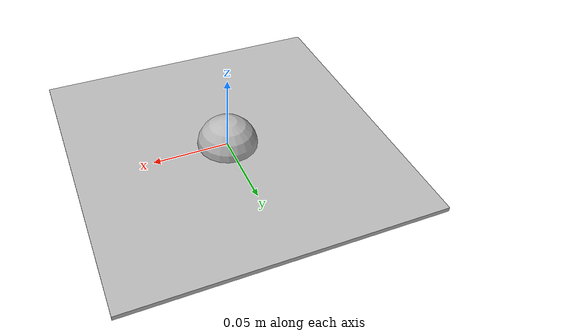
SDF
<?xml version="1.0" ?>
<sdf version="1.6">
	<model name="roboy_vr_booth">
		<link name="base">
			<self_collide>false</self_collide>
			<pose frame="">0.0 0.0 0.0 0.0 -0.0 0.0</pose>
			<inertial>
				<pose frame="">0.0 0.0 0.0 0 0 0</pose>
				<mass>1000</mass>
				<inertia>
					<ixx>0.1</ixx>
					<ixy>0.0</ixy>
					<ixz>0.0</ixz>
					<iyy>0.1</iyy>
					<iyz>0.0</iyz>
					<izz>0.1</izz>
				</inertia>
			</inertial>
			<collision name="base_collision">
				<geometry>
					<box>
						<size>0.2 0.2 0.003</size>
					</box>
				</geometry>
			</collision>
			<visual name="base_visual">
				<geometry>
					<box>
						<size>0.2 0.2 0.003</size>
					</box>
				</geometry>
			</visual>
		</link>
		<link name="link5">
			<self_collide>false</self_collide>
			<pose frame="">0 0 0 0 0 0</pose>
			<inertial>
				<pose frame="">0.0 0.0 0.1 0 0 0</pose>
				<mass>0.0001</mass>
				<inertia>
					<ixx>0.001</ixx>
					<ixy>0.0</ixy>
					<ixz>0.0</ixz>
					<iyy>0.001</iyy>
					<iyz>0.0</iyz>
					<izz>0.001</izz>
				</inertia>
			</inertial>
			<collision name="link5_collision">
				<geometry>
					<sphere>
						<radius>0.02</radius>
					</sphere>
				</geometry>
			</collision>
			<visual name="link5_visual">
				<geometry>
					<sphere>
						<radius>0.02</radius>
					</sphere>
				</geometry>
			</visual>
		</link>
		<link name="link0">
			<self_collide>false</self_collide>
			<pose frame="">0 0 0 0 0 0</pose>
			<inertial>
				<pose frame="">0.0 0.0 0.1 0 0 0</pose>
				<mass>0.0001</mass>
				<inertia>
					<ixx>0.001</ixx>
					<ixy>0.0</ixy>
					<ixz>0.0</ixz>
					<iyy>0.001</iyy>
					<iyz>0.0</iyz>
					<izz>0.001</izz>
				</inertia>
			</inertial>
		</link>

		<link name="link1">
			<self_collide>false</self_collide>
			<pose frame="">0 0 0 0 0 0</pose>
			<inertial>
				<pose frame="">0.0 0.0 0.1 0 0 0</pose>
				<mass>0.0001</mass>
				<inertia>
					<ixx>0.001</ixx>
					<ixy>0.0</ixy>
					<ixz>0.0</ixz>
					<iyy>0.001</iyy>
					<iyz>0.0</iyz>
					<izz>0.001</izz>
				</inertia>
			</inertial>
		</link>

		<link name="link2">
			<self_collide>false</self_collide>
			<pose frame="">0 0 0 0 0 0</pose>
			<inertial>
				<pose frame="">0.0 0.0 0.1 0 0 0</pose>
				<mass>0.0001</mass>
				<inertia>
					<ixx>0.001</ixx>
					<ixy>0.0</ixy>
					<ixz>0.0</ixz>
					<iyy>0.001</iyy>
					<iyz>0.0</iyz>
					<izz>0.001</izz>
				</inertia>
			</inertial>
		</link>

		<link name="link3">
			<self_collide>false</self_collide>
			<pose frame="">0 0 0 0 0 0</pose>
			<inertial>
				<pose frame="">0.0 0.0 0.1 0 0 0</pose>
				<mass>0.0001</mass>
				<inertia>
					<ixx>0.001</ixx>
					<ixy>0.0</ixy>
					<ixz>0.0</ixz>
					<iyy>0.001</iyy>
					<iyz>0.0</iyz>
					<izz>0.001</izz>
				</inertia>
			</inertial>
		</link>

		<link name="link4">
			<self_collide>false</self_collide>
			<pose frame="">0 0 0 0 0 0</pose>
			<inertial>
				<pose frame="">0.0 0.0 0.1 0 0 0</pose>
				<mass>0.0001</mass>
				<inertia>
					<ixx>0.001</ixx>
					<ixy>0.0</ixy>
					<ixz>0.0</ixz>
					<iyy>0.001</iyy>
					<iyz>0.0</iyz>
					<izz>0.001</izz>
				</inertia>
			</inertial>
		</link>

		<joint name="joint0" type="prismatic">
			<parent>base</parent>
			<child>link0</child>
			<pose frame="">0 0 0 0 0 0</pose>
			<axis>
				<xyz>1 0 0</xyz>
				<limit>
					<lower>-1</lower>
					<upper>1</upper>
				</limit>
				<use_parent_model_frame>0</use_parent_model_frame>
			</axis>
		</joint>
		<joint name="joint1" type="prismatic">
			<parent>link0</parent>
			<child>link1</child>
			<pose frame="">0 0 0 0 0 0</pose>
			<axis>
				<xyz>0 1 0</xyz>
				<limit>
					<lower>-1</lower>
					<upper>1</upper>
				</limit>
				<use_parent_model_frame>0</use_parent_model_frame>
			</axis>
		</joint>
		<joint name="joint2" type="prismatic">
			<parent>link1</parent>
			<child>link2</child>
			<pose frame="">0 0 0 0 0 0</pose>
			<axis>
				<xyz>0 0 1</xyz>
				<limit>
					<lower>-1</lower>
					<upper>1</upper>
				</limit>
				<use_parent_model_frame>0</use_parent_model_frame>
			</axis>
		</joint>
		<joint name="joint3" type="revolute">
			<parent>link2</parent>
			<child>link3</child>
			<pose frame="">0 0 0 0 0 0</pose>
			<axis>
				<xyz>1 0 0</xyz>
				<limit>
					<lower>-3.141592653589793</lower>
					<upper>3.141592653589793</upper>
				</limit>
				<use_parent_model_frame>0</use_parent_model_frame>
			</axis>
		</joint>
		<joint name="joint4" type="revolute">
			<parent>link3</parent>
			<child>link4</child>
			<pose frame="">0 0 0 0 0 0</pose>
			<axis>
				<xyz>0 1 0</xyz>
				<limit>
					<lower>-3.141592653589793</lower>
					<upper>3.141592653589793</upper>
				</limit>
				<use_parent_model_frame>0</use_parent_model_frame>
			</axis>
		</joint>
		<joint name="joint5" type="revolute">
			<parent>link4</parent>
			<child>link5</child>
			<pose frame="">0 0 0 0 0 0</pose>
			<axis>
				<xyz>0 0 1</xyz>
				<limit>
					<lower>-3.141592653589793</lower>
					<upper>3.141592653589793</upper>
				</limit>
				<use_parent_model_frame>0</use_parent_model_frame>
			</axis>
		</joint>

		<plugin filename="libmusc_plugin.so" name="musc_plugin">
			<myoMuscle name="motor0">
				<link name="base">
					<viaPoint type="FIXPOINT">0.059400126262492046 -0.03429467888754755 0.03641064222490489</viaPoint>
				</link>
				<link name="link5">
					<viaPoint type="FIXPOINT">0.00822108970998162 -0.00440838939219545 -0.012135254915622973</viaPoint>
				</link>
			</myoMuscle>
			<myoMuscle name="motor1">
				<link name="base">
					<viaPoint type="FIXPOINT">0.08400446416709052 -0.04850000000000001 0.10499999999999997</viaPoint>
				</link>
				<link name="link5">
					<viaPoint type="FIXPOINT">0.012940121856345141 -0.0071329238722129245 -0.004635254915622209</viaPoint>
				</link>
			</myoMuscle>
			<myoMuscle name="motor2">
				<link name="base">
					<viaPoint type="FIXPOINT">0.05940012626249207 -0.03429467888754756 0.17358935777509507</viaPoint>
				</link>
				<link name="link5">
					<viaPoint type="FIXPOINT">0.008221089709975045 -0.004408389392191649 0.01213525491562546</viaPoint>
				</link>
			</myoMuscle>
			<myoMuscle name="motor3">
				<link name="base">
					<viaPoint type="FIXPOINT">4.440892098500626e-18 3.1641356201816965e-17 0.20199999999999999</viaPoint>
				</link>
				<link name="link5">
					<viaPoint type="FIXPOINT">0.0005855353031514266 2.0377414942058383e-19 0.015</viaPoint>
				</link>
			</myoMuscle>
			<myoMuscle name="motor4">
				<link name="base">
					<viaPoint type="FIXPOINT">-0.059400126262492046 0.034294678887547614 0.17358935777509513</viaPoint>
				</link>
				<link name="link5">
					<viaPoint type="FIXPOINT">-0.007050019103672189 0.004408389392191653 0.01213525491562546</viaPoint>
				</link>
			</myoMuscle>
			<myoMuscle name="motor5">
				<link name="base">
					<viaPoint type="FIXPOINT">-0.08400446416709052 0.04850000000000008 0.105</viaPoint>
				</link>
				<link name="link5">
					<viaPoint type="FIXPOINT">-0.011769051250044814 0.007132923872214385 0.004635254915626206</viaPoint>
				</link>
			</myoMuscle>
			<myoMuscle name="motor6">
				<link name="base">
					<viaPoint type="FIXPOINT">-0.059400126262492046 0.034294678887547614 0.03641064222490489</viaPoint>
				</link>
				<link name="link5">
					<viaPoint type="FIXPOINT">-0.00705001910367877 0.00440838939219545 -0.012135254915622973</viaPoint>
				</link>
			</myoMuscle>
			<myoMuscle name="motor7">
				<link name="base">
					<viaPoint type="FIXPOINT">-0.05940012626249207 -0.0342946788875475 0.03641064222490489</viaPoint>
				</link>
				<link name="link5">
					<viaPoint type="FIXPOINT">-0.007050019103678771 -0.004408389392195446 -0.012135254915622973</viaPoint>
				</link>
			</myoMuscle>
			<myoMuscle name="motor8">
				<link name="base">
					<viaPoint type="FIXPOINT">-0.08400446416709055 -0.048499999999999946 0.10499999999999997</viaPoint>
				</link>
				<link name="link5">
					<viaPoint type="FIXPOINT">-0.011769051250044817 -0.007132923872214378 0.004635254915626206</viaPoint>
				</link>
			</myoMuscle>
			<myoMuscle name="motor9">
				<link name="base">
					<viaPoint type="FIXPOINT">-0.05940012626249208 -0.03429467888754752 0.17358935777509507</viaPoint>
				</link>
				<link name="link5">
					<viaPoint type="FIXPOINT">-0.007050019103672195 -0.0044083893921916415 0.01213525491562546</viaPoint>
				</link>
			</myoMuscle>
			<myoMuscle name="motor10">
				<link name="base">
					<viaPoint type="FIXPOINT">0.05940012626249208 0.03429467888754757 0.17358935777509513</viaPoint>
				</link>
				<link name="link5">
					<viaPoint type="FIXPOINT">0.008221089709975045 0.004408389392191647 0.01213525491562546</viaPoint>
				</link>
			</myoMuscle>
			<myoMuscle name="motor11">
				<link name="base">
					<viaPoint type="FIXPOINT">0.08400446416709055 0.048500000000000015 0.105</viaPoint>
				</link>
				<link name="link5">
					<viaPoint type="FIXPOINT">0.012940121856345146 0.007132923872212922 -0.004635254915622209</viaPoint>
				</link>
			</myoMuscle>
			<myoMuscle name="motor12">
				<link name="base">
					<viaPoint type="FIXPOINT">0.05940012626249208 0.03429467888754757 0.03641064222490489</viaPoint>
				</link>
				<link name="link5">
					<viaPoint type="FIXPOINT">0.008221089709981626 0.004408389392195442 -0.012135254915622973</viaPoint>
				</link>
			</myoMuscle>
			<myoMuscle name="motor13">
				<link name="base">
					<viaPoint type="FIXPOINT">4.440892098500626e-18 -0.06858935777509508 0.03641064222490489</viaPoint>
				</link>
				<link name="link5">
					<viaPoint type="FIXPOINT">0.0005855353031514266 -0.008816778784383297 -0.012135254915625424</viaPoint>
				</link>
			</myoMuscle>
			<myoMuscle name="motor14">
				<link name="base">
					<viaPoint type="FIXPOINT">4.440892098500626e-18 -0.09699999999999996 0.105</viaPoint>
				</link>
				<link name="link5">
					<viaPoint type="FIXPOINT">0.0005855353031514266 -0.014265847744425846 -0.004635254915622209</viaPoint>
				</link>
			</myoMuscle>
			<myoMuscle name="motor15">
				<link name="base">
					<viaPoint type="FIXPOINT">4.440892098500626e-18 -0.06858935777509508 0.17358935777509513</viaPoint>
				</link>
				<link name="link5">
					<viaPoint type="FIXPOINT">0.0005855353031514266 -0.008816778784383297 0.01213525491562546</viaPoint>
				</link>
			</myoMuscle>
			<myoMuscle name="motor16">
				<link name="base">
					<viaPoint type="FIXPOINT">4.440892098500626e-18 0.06858935777509516 0.17358935777509507</viaPoint>
				</link>
				<link name="link5">
					<viaPoint type="FIXPOINT">0.0005855353031514266 0.008816778784390895 0.012135254915622973</viaPoint>
				</link>
			</myoMuscle>
			<myoMuscle name="motor17">
				<link name="base">
					<viaPoint type="FIXPOINT">4.440892098500626e-18 0.09700000000000003 0.10499999999999997</viaPoint>
				</link>
				<link name="link5">
					<viaPoint type="FIXPOINT">0.0005855353031514266 0.014265847744428763 -0.004635254915626206</viaPoint>
				</link>
			</myoMuscle>
			<myoMuscle name="motor18">
				<link name="base">
					<viaPoint type="FIXPOINT">4.440892098500626e-18 0.06858935777509513 0.03641064222490489</viaPoint>
				</link>
				<link name="link5">
					<viaPoint type="FIXPOINT">0.0005855353031514266 0.008816778784390895 -0.012135254915622973</viaPoint>
				</link>
			</myoMuscle>
		</plugin>
	</model>
</sdf>
